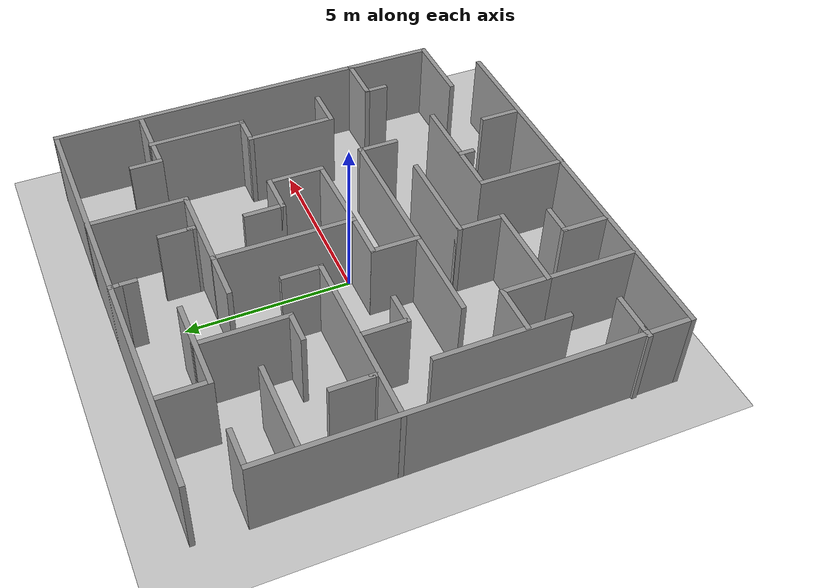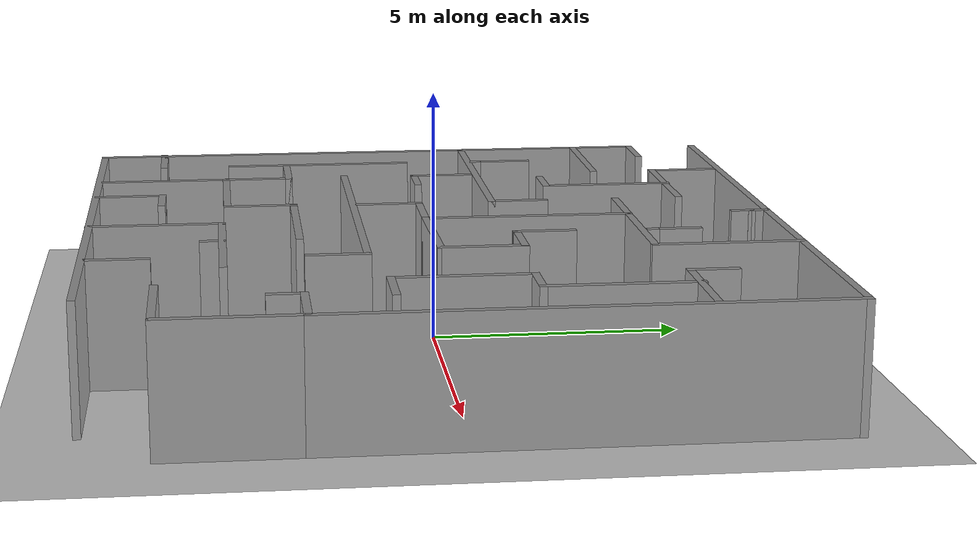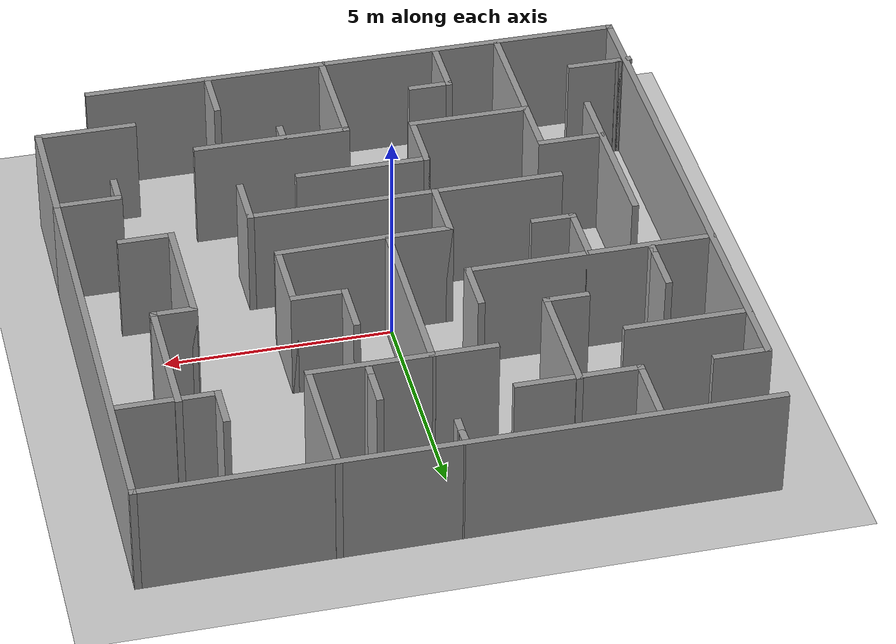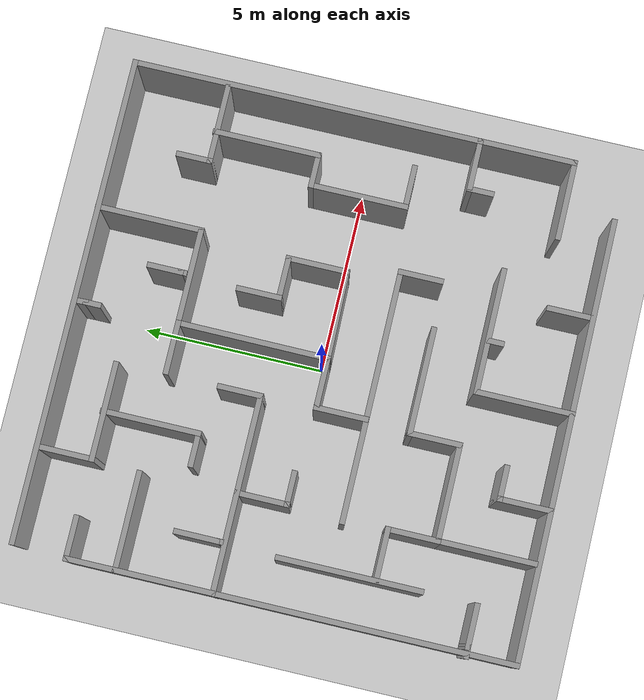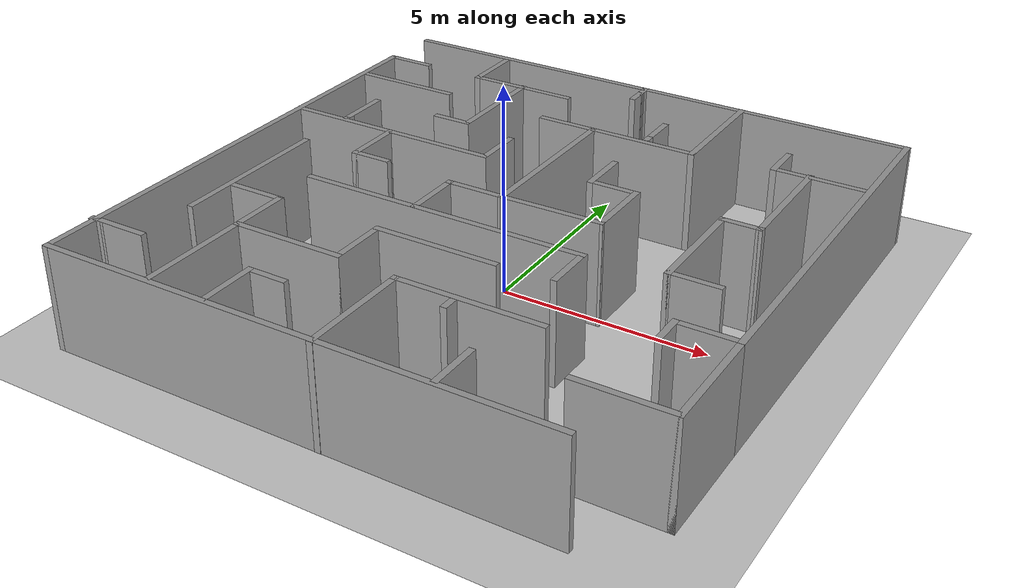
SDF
<sdf version="1.6">
 <world name="default">
  <scene><ambient>0.4 0.4 0.4 1</ambient><background>0.7 0.7 0.7 1</background><shadows>1</shadows></scene>
  <light name="sun" type="directional">
   <pose>0 0 10 0 -0 0</pose>
   <diffuse>0.8 0.8 0.8 1</diffuse>
   <specular>0.2 0.2 0.2 1</specular>
   <attenuation>
    <range>1000</range>
    <constant>0.9</constant>
    <linear>0.01</linear>
    <quadratic>0.001</quadratic>
   </attenuation>
   <direction>-0.5 0.1 -0.9</direction>
  </light>
  <model name="ground_plane">
   <static>1</static>
   <link name="link">
    <collision name="collision">
     <geometry><plane><normal>0 0 1</normal><size>100 100</size></plane></geometry>
     <surface>
      <contact><collide_bitmask>65535</collide_bitmask></contact>
      <friction><ode><mu>100</mu><mu2>50</mu2></ode></friction>
     </surface>
    </collision>
    <visual name="visual">
     <cast_shadows>0</cast_shadows>
     <geometry><plane><normal>0 0 1</normal><size>100 100</size></plane></geometry>
     <material>
      <script><uri>file://media/materials/scripts/gazebo.material</uri><name>Gazebo/Grey</name></script>
     </material>
    </visual>
   </link>
  </model>
  <physics name="default_physics" default="0" type="ode">
   <real_time_update_rate>1000</real_time_update_rate>
   <max_step_size>0.001</max_step_size>
   <real_time_factor>1</real_time_factor>
   <ode>
    <solver>
     <type>quick</type>
     <iters>150</iters>
     <precon_iters>0</precon_iters>
     <sor>1.4</sor>
     <use_dynamic_moi_rescaling>1</use_dynamic_moi_rescaling>
    </solver>
    <constraints>
     <cfm>1e-05</cfm>
     <erp>0.2</erp>
     <contact_max_correcting_vel>2000</contact_max_correcting_vel>
     <contact_surface_layer>0.01</contact_surface_layer>
    </constraints>
   </ode>
  </physics>
  <gravity>0 0 -9.8</gravity>
  <magnetic_field>6e-06 2.3e-05 -4.2e-05</magnetic_field>
  <atmosphere type="adiabatic"/>
  <spherical_coordinates>
   <surface_model>EARTH_WGS84</surface_model>
   <latitude_deg>0</latitude_deg>
   <longitude_deg>0</longitude_deg>
   <elevation>0</elevation>
   <heading_deg>0</heading_deg>
  </spherical_coordinates>
  <model name="enclosed_maze">
   <pose>0.00372 -0.004302 0 0 -0 0</pose>
   <link name="Wall_0">
    <collision name="Wall_0_Collision">
     <geometry><box><size>12.25 0.15 2.5</size></box></geometry>
     <pose>0 0 1.25 0 -0 0</pose>
    </collision>
    <visual name="Wall_0_Visual">
     <pose>0 0 1.25 0 -0 0</pose>
     <geometry><box><size>12.25 0.15 2.5</size></box></geometry>
     <material>
      <script><uri>file://media/materials/scripts/gazebo.material</uri><name>Gazebo/Grey</name></script>
      <ambient>1 1 1 1</ambient>
     </material>
     <meta><layer>0</layer></meta>
    </visual>
    <pose>-0.636099 -6.78809 0 0 -0 3.14159</pose>
   </link>
   <link name="Wall_1">
    <collision name="Wall_1_Collision">
     <geometry><box><size>12.25 0.15 2.5</size></box></geometry>
     <pose>0 0 1.25 0 -0 0</pose>
    </collision>
    <visual name="Wall_1_Visual">
     <pose>0 0 1.25 0 -0 0</pose>
     <geometry><box><size>12.25 0.15 2.5</size></box></geometry>
     <material>
      <script><uri>file://media/materials/scripts/gazebo.material</uri><name>Gazebo/Grey</name></script>
      <ambient>1 1 1 1</ambient>
     </material>
     <meta><layer>0</layer></meta>
    </visual>
    <pose>-6.6861 -0.738093 0 0 -0 1.5708</pose>
   </link>
   <link name="Wall_11">
    <collision name="Wall_11_Collision">
     <geometry><box><size>0.5 0.15 2.5</size></box></geometry>
     <pose>0 0 1.25 0 -0 0</pose>
    </collision>
    <visual name="Wall_11_Visual">
     <pose>0 0 1.25 0 -0 0</pose>
     <geometry><box><size>0.5 0.15 2.5</size></box></geometry>
     <material>
      <script><uri>file://media/materials/scripts/gazebo.material</uri><name>Gazebo/Grey</name></script>
      <ambient>1 1 1 1</ambient>
     </material>
     <meta><layer>0</layer></meta>
    </visual>
    <pose>1.49223 -4.3839 0 0 -0 -1.5708</pose>
   </link>
   <link name="Wall_13">
    <collision name="Wall_13_Collision">
     <geometry><box><size>2.25 0.15 2.5</size></box></geometry>
     <pose>0 0 1.25 0 -0 0</pose>
    </collision>
    <visual name="Wall_13_Visual">
     <pose>0 0 1.25 0 -0 0</pose>
     <geometry><box><size>2.25 0.15 2.5</size></box></geometry>
     <material>
      <script><uri>file://media/materials/scripts/gazebo.material</uri><name>Gazebo/Grey</name></script>
      <ambient>1 1 1 1</ambient>
     </material>
     <meta><layer>0</layer></meta>
    </visual>
    <pose>5.70565 -5.41039 0 0 -0 0</pose>
   </link>
   <link name="Wall_14">
    <collision name="Wall_14_Collision">
     <geometry><box><size>2.75 0.15 2.5</size></box></geometry>
     <pose>0 0 1.25 0 -0 0</pose>
    </collision>
    <visual name="Wall_14_Visual">
     <pose>0 0 1.25 0 -0 0</pose>
     <geometry><box><size>2.75 0.15 2.5</size></box></geometry>
     <material>
      <script><uri>file://media/materials/scripts/gazebo.material</uri><name>Gazebo/Grey</name></script>
      <ambient>1 1 1 1</ambient>
     </material>
     <meta><layer>0</layer></meta>
    </visual>
    <pose>6.75565 -4.11039 0 0 -0 1.5708</pose>
   </link>
   <link name="Wall_15">
    <collision name="Wall_15_Collision">
     <geometry><box><size>1.5 0.15 2.5</size></box></geometry>
     <pose>0 0 1.25 0 -0 0</pose>
    </collision>
    <visual name="Wall_15_Visual">
     <pose>0 0 1.25 0 -0 0</pose>
     <geometry><box><size>1.5 0.15 2.5</size></box></geometry>
     <material>
      <script><uri>file://media/materials/scripts/gazebo.material</uri><name>Gazebo/Grey</name></script>
      <ambient>1 1 1 1</ambient>
     </material>
     <meta><layer>0</layer></meta>
    </visual>
    <pose>6.08065 -2.81039 0 0 -0 3.14159</pose>
   </link>
   <link name="Wall_16">
    <collision name="Wall_16_Collision">
     <geometry><box><size>0.75 0.15 2.5</size></box></geometry>
     <pose>0 0 1.25 0 -0 0</pose>
    </collision>
    <visual name="Wall_16_Visual">
     <pose>0 0 1.25 0 -0 0</pose>
     <geometry><box><size>0.75 0.15 2.5</size></box></geometry>
     <material>
      <script><uri>file://media/materials/scripts/gazebo.material</uri><name>Gazebo/Grey</name></script>
      <ambient>1 1 1 1</ambient>
     </material>
     <meta><layer>0</layer></meta>
    </visual>
    <pose>5.40565 -3.11039 0 0 -0 -1.5708</pose>
   </link>
   <link name="Wall_2">
    <collision name="Wall_2_Collision">
     <geometry><box><size>1.25 0.15 2.5</size></box></geometry>
     <pose>0 0 1.25 0 -0 0</pose>
    </collision>
    <visual name="Wall_2_Visual">
     <pose>0 0 1.25 0 -0 0</pose>
     <geometry><box><size>1.25 0.15 2.5</size></box></geometry>
     <material>
      <script><uri>file://media/materials/scripts/gazebo.material</uri><name>Gazebo/Grey</name></script>
      <ambient>1 1 1 1</ambient>
     </material>
     <meta><layer>0</layer></meta>
    </visual>
    <pose>-6.1361 5.31191 0 0 -0 0</pose>
   </link>
   <link name="Wall_21">
    <collision name="Wall_21_Collision">
     <geometry><box><size>1.5 0.15 2.5</size></box></geometry>
     <pose>0 0 1.25 0 -0 0</pose>
    </collision>
    <visual name="Wall_21_Visual">
     <pose>0 0 1.25 0 -0 0</pose>
     <geometry><box><size>1.5 0.15 2.5</size></box></geometry>
     <material>
      <script><uri>file://media/materials/scripts/gazebo.material</uri><name>Gazebo/Grey</name></script>
      <ambient>1 1 1 1</ambient>
     </material>
     <meta><layer>0</layer></meta>
    </visual>
    <pose>-3.99426 5.96532 0 0 -0 -1.5708</pose>
   </link>
   <link name="Wall_22">
    <collision name="Wall_22_Collision">
     <geometry><box><size>2.75 0.15 2.5</size></box></geometry>
     <pose>0 0 1.25 0 -0 0</pose>
    </collision>
    <visual name="Wall_22_Visual">
     <pose>0 0 1.25 0 -0 0</pose>
     <geometry><box><size>2.75 0.15 2.5</size></box></geometry>
     <material>
      <script><uri>file://media/materials/scripts/gazebo.material</uri><name>Gazebo/Grey</name></script>
      <ambient>1 1 1 1</ambient>
     </material>
     <meta><layer>0</layer></meta>
    </visual>
    <pose>-2.69426 5.29033 0 0 -0 0</pose>
   </link>
   <link name="Wall_25">
    <collision name="Wall_25_Collision">
     <geometry><box><size>9.75 0.15 2.5</size></box></geometry>
     <pose>0 0 1.25 0 -0 0</pose>
    </collision>
    <visual name="Wall_25_Visual">
     <pose>0 0 1.25 0 -0 0</pose>
     <geometry><box><size>9.75 0.15 2.5</size></box></geometry>
     <material>
      <script><uri>file://media/materials/scripts/gazebo.material</uri><name>Gazebo/Grey</name></script>
      <ambient>1 1 1 1</ambient>
     </material>
     <meta><layer>0</layer></meta>
    </visual>
    <pose>6.75565 1.98961 0 0 -0 1.5708</pose>
   </link>
   <link name="Wall_26">
    <collision name="Wall_26_Collision">
     <geometry><box><size>13.5 0.15 2.5</size></box></geometry>
     <pose>0 0 1.25 0 -0 0</pose>
    </collision>
    <visual name="Wall_26_Visual">
     <pose>0 0 1.25 0 -0 0</pose>
     <geometry><box><size>13.5 0.15 2.5</size></box></geometry>
     <material>
      <script><uri>file://media/materials/scripts/gazebo.material</uri><name>Gazebo/Grey</name></script>
      <ambient>1 1 1 1</ambient>
     </material>
     <meta><layer>0</layer></meta>
    </visual>
    <pose>0.080651 6.78961 0 0 -0 3.14159</pose>
   </link>
   <link name="Wall_28">
    <collision name="Wall_28_Collision">
     <geometry><box><size>1.25 0.15 2.5</size></box></geometry>
     <pose>0 0 1.25 0 -0 0</pose>
    </collision>
    <visual name="Wall_28_Visual">
     <pose>0 0 1.25 0 -0 0</pose>
     <geometry><box><size>1.25 0.15 2.5</size></box></geometry>
     <material>
      <script><uri>file://media/materials/scripts/gazebo.material</uri><name>Gazebo/Grey</name></script>
      <ambient>1 1 1 1</ambient>
     </material>
     <meta><layer>0</layer></meta>
    </visual>
    <pose>2.76842 -2.0665 0 0 -0 1.5708</pose>
   </link>
   <link name="Wall_29">
    <collision name="Wall_29_Collision">
     <geometry><box><size>7 0.15 2.5</size></box></geometry>
     <pose>0 0 1.25 0 -0 0</pose>
    </collision>
    <visual name="Wall_29_Visual">
     <pose>0 0 1.25 0 -0 0</pose>
     <geometry><box><size>7 0.15 2.5</size></box></geometry>
     <material>
      <script><uri>file://media/materials/scripts/gazebo.material</uri><name>Gazebo/Grey</name></script>
      <ambient>1 1 1 1</ambient>
     </material>
     <meta><layer>0</layer></meta>
    </visual>
    <pose>-0.656585 -1.5165 0 0 -0 3.14159</pose>
   </link>
   <link name="Wall_31">
    <collision name="Wall_31_Collision">
     <geometry><box><size>1.5 0.15 2.5</size></box></geometry>
     <pose>0 0 1.25 0 -0 0</pose>
    </collision>
    <visual name="Wall_31_Visual">
     <pose>0 0 1.25 0 -0 0</pose>
     <geometry><box><size>1.5 0.15 2.5</size></box></geometry>
     <material>
      <script><uri>file://media/materials/scripts/gazebo.material</uri><name>Gazebo/Grey</name></script>
      <ambient>1 1 1 1</ambient>
     </material>
     <meta><layer>0</layer></meta>
    </visual>
    <pose>-1.30562 -0.830616 0 0 -0 1.5708</pose>
   </link>
   <link name="Wall_32">
    <collision name="Wall_32_Collision">
     <geometry><box><size>1.5 0.15 2.5</size></box></geometry>
     <pose>0 0 1.25 0 -0 0</pose>
    </collision>
    <visual name="Wall_32_Visual">
     <pose>0 0 1.25 0 -0 0</pose>
     <geometry><box><size>1.5 0.15 2.5</size></box></geometry>
     <material>
      <script><uri>file://media/materials/scripts/gazebo.material</uri><name>Gazebo/Grey</name></script>
      <ambient>1 1 1 1</ambient>
     </material>
     <meta><layer>0</layer></meta>
    </visual>
    <pose>-0.630618 -0.155616 0 0 -0 0</pose>
   </link>
   <link name="Wall_33">
    <collision name="Wall_33_Collision">
     <geometry><box><size>4.25 0.15 2.5</size></box></geometry>
     <pose>0 0 1.25 0 -0 0</pose>
    </collision>
    <visual name="Wall_33_Visual">
     <pose>0 0 1.25 0 -0 0</pose>
     <geometry><box><size>4.25 0.15 2.5</size></box></geometry>
     <material>
      <script><uri>file://media/materials/scripts/gazebo.material</uri><name>Gazebo/Grey</name></script>
      <ambient>1 1 1 1</ambient>
     </material>
     <meta><layer>0</layer></meta>
    </visual>
    <pose>0.054382 1.89438 0 0 -0 1.56592</pose>
   </link>
   <link name="Wall_34">
    <collision name="Wall_34_Collision">
     <geometry><box><size>2.73 0.15 2.5</size></box></geometry>
     <pose>0 0 1.25 0 -0 0</pose>
    </collision>
    <visual name="Wall_34_Visual">
     <pose>0 0 1.25 0 -0 0</pose>
     <geometry><box><size>2.73 0.15 2.5</size></box></geometry>
     <material>
      <script><uri>file://media/materials/scripts/gazebo.material</uri><name>Gazebo/Grey</name></script>
      <ambient>1 1 1 1</ambient>
     </material>
     <meta><layer>0</layer></meta>
    </visual>
    <pose>1.35438 3.94439 0 0 -0 0</pose>
   </link>
   <link name="Wall_37">
    <collision name="Wall_37_Collision">
     <geometry><box><size>3 0.15 2.5</size></box></geometry>
     <pose>0 0 1.25 0 -0 0</pose>
    </collision>
    <visual name="Wall_37_Visual">
     <pose>0 0 1.25 0 -0 0</pose>
     <geometry><box><size>3 0.15 2.5</size></box></geometry>
     <material>
      <script><uri>file://media/materials/scripts/gazebo.material</uri><name>Gazebo/Grey</name></script>
      <ambient>1 1 1 1</ambient>
     </material>
     <meta><layer>0</layer></meta>
    </visual>
    <pose>2.64438 5.36938 0 0 -0 1.5708</pose>
   </link>
   <link name="Wall_39">
    <collision name="Wall_39_Collision">
     <geometry><box><size>1 0.15 2.5</size></box></geometry>
     <pose>0 0 1.25 0 -0 0</pose>
    </collision>
    <visual name="Wall_39_Visual">
     <pose>0 0 1.25 0 -0 0</pose>
     <geometry><box><size>1 0.15 2.5</size></box></geometry>
     <material>
      <script><uri>file://media/materials/scripts/gazebo.material</uri><name>Gazebo/Grey</name></script>
      <ambient>1 1 1 1</ambient>
     </material>
     <meta><layer>0</layer></meta>
    </visual>
    <pose>4.55111 4.60002 0 0 -0 -1.5708</pose>
   </link>
   <link name="Wall_4">
    <collision name="Wall_4_Collision">
     <geometry><box><size>1.25 0.15 2.5</size></box></geometry>
     <pose>0 0 1.25 0 -0 0</pose>
    </collision>
    <visual name="Wall_4_Visual">
     <pose>0 0 1.25 0 -0 0</pose>
     <geometry><box><size>1.25 0.15 2.5</size></box></geometry>
     <material>
      <script><uri>file://media/materials/scripts/gazebo.material</uri><name>Gazebo/Grey</name></script>
      <ambient>1 1 1 1</ambient>
     </material>
     <meta><layer>0</layer></meta>
    </visual>
    <pose>2.71551 -6.14504 0 0 -0 1.5708</pose>
   </link>
   <link name="Wall_40">
    <collision name="Wall_40_Collision">
     <geometry><box><size>2.25 0.15 2.5</size></box></geometry>
     <pose>0 0 1.25 0 -0 0</pose>
    </collision>
    <visual name="Wall_40_Visual">
     <pose>0 0 1.25 0 -0 0</pose>
     <geometry><box><size>2.25 0.15 2.5</size></box></geometry>
     <material>
      <script><uri>file://media/materials/scripts/gazebo.material</uri><name>Gazebo/Grey</name></script>
      <ambient>1 1 1 1</ambient>
     </material>
     <meta><layer>0</layer></meta>
    </visual>
    <pose>5.60111 4.17502 0 0 -0 0</pose>
   </link>
   <link name="Wall_42">
    <collision name="Wall_42_Collision">
     <geometry><box><size>3 0.15 2.5</size></box></geometry>
     <pose>0 0 1.25 0 -0 0</pose>
    </collision>
    <visual name="Wall_42_Visual">
     <pose>0 0 1.25 0 -0 0</pose>
     <geometry><box><size>3 0.15 2.5</size></box></geometry>
     <material>
      <script><uri>file://media/materials/scripts/gazebo.material</uri><name>Gazebo/Grey</name></script>
      <ambient>1 1 1 1</ambient>
     </material>
     <meta><layer>0</layer></meta>
    </visual>
    <pose>5.37984 2.78462 0 0 -0 -1.5708</pose>
   </link>
   <link name="Wall_43">
    <collision name="Wall_43_Collision">
     <geometry><box><size>1 0.15 2.5</size></box></geometry>
     <pose>0 0 1.25 0 -0 0</pose>
    </collision>
    <visual name="Wall_43_Visual">
     <pose>0 0 1.25 0 -0 0</pose>
     <geometry><box><size>1 0.15 2.5</size></box></geometry>
     <material>
      <script><uri>file://media/materials/scripts/gazebo.material</uri><name>Gazebo/Grey</name></script>
      <ambient>1 1 1 1</ambient>
     </material>
     <meta><layer>0</layer></meta>
    </visual>
    <pose>4.95484 1.35962 0 0 -0 3.14159</pose>
   </link>
   <link name="Wall_44">
    <collision name="Wall_44_Collision">
     <geometry><box><size>2.75 0.15 2.5</size></box></geometry>
     <pose>0 0 1.25 0 -0 0</pose>
    </collision>
    <visual name="Wall_44_Visual">
     <pose>0 0 1.25 0 -0 0</pose>
     <geometry><box><size>2.75 0.15 2.5</size></box></geometry>
     <material>
      <script><uri>file://media/materials/scripts/gazebo.material</uri><name>Gazebo/Grey</name></script>
      <ambient>1 1 1 1</ambient>
     </material>
     <meta><layer>0</layer></meta>
    </visual>
    <pose>4.52984 0.059621 0 0 -0 -1.5708</pose>
   </link>
   <link name="Wall_45">
    <collision name="Wall_45_Collision">
     <geometry><box><size>1.25 0.15 2.5</size></box></geometry>
     <pose>0 0 1.25 0 -0 0</pose>
    </collision>
    <visual name="Wall_45_Visual">
     <pose>0 0 1.25 0 -0 0</pose>
     <geometry><box><size>1.25 0.15 2.5</size></box></geometry>
     <material>
      <script><uri>file://media/materials/scripts/gazebo.material</uri><name>Gazebo/Grey</name></script>
      <ambient>1 1 1 1</ambient>
     </material>
     <meta><layer>0</layer></meta>
    </visual>
    <pose>5.07984 -1.24038 0 0 -0 0</pose>
   </link>
   <link name="Wall_48">
    <collision name="Wall_48_Collision">
     <geometry><box><size>1.25 0.15 2.5</size></box></geometry>
     <pose>0 0 1.25 0 -0 0</pose>
    </collision>
    <visual name="Wall_48_Visual">
     <pose>0 0 1.25 0 -0 0</pose>
     <geometry><box><size>1.25 0.15 2.5</size></box></geometry>
     <material>
      <script><uri>file://media/materials/scripts/gazebo.material</uri><name>Gazebo/Grey</name></script>
      <ambient>1 1 1 1</ambient>
     </material>
     <meta><layer>0</layer></meta>
    </visual>
    <pose>1.34193 2.03834 0 0 -0 -1.5708</pose>
   </link>
   <link name="Wall_49">
    <collision name="Wall_49_Collision">
     <geometry><box><size>1.25 0.15 2.5</size></box></geometry>
     <pose>0 0 1.25 0 -0 0</pose>
    </collision>
    <visual name="Wall_49_Visual">
     <pose>0 0 1.25 0 -0 0</pose>
     <geometry><box><size>1.25 0.15 2.5</size></box></geometry>
     <material>
      <script><uri>file://media/materials/scripts/gazebo.material</uri><name>Gazebo/Grey</name></script>
      <ambient>1 1 1 1</ambient>
     </material>
     <meta><layer>0</layer></meta>
    </visual>
    <pose>1.89193 1.48834 0 0 -0 0</pose>
   </link>
   <link name="Wall_50">
    <collision name="Wall_50_Collision">
     <geometry><box><size>1.75 0.15 2.5</size></box></geometry>
     <pose>0 0 1.25 0 -0 0</pose>
    </collision>
    <visual name="Wall_50_Visual">
     <pose>0 0 1.25 0 -0 0</pose>
     <geometry><box><size>1.75 0.15 2.5</size></box></geometry>
     <material>
      <script><uri>file://media/materials/scripts/gazebo.material</uri><name>Gazebo/Grey</name></script>
      <ambient>1 1 1 1</ambient>
     </material>
     <meta><layer>0</layer></meta>
    </visual>
    <pose>2.44193 0.688339 0 0 -0 -1.5708</pose>
   </link>
   <link name="Wall_51">
    <collision name="Wall_51_Collision">
     <geometry><box><size>2.54795 0.15 2.5</size></box></geometry>
     <pose>0 0 1.25 0 -0 0</pose>
    </collision>
    <visual name="Wall_51_Visual">
     <pose>0 0 1.25 0 -0 0</pose>
     <geometry><box><size>2.54795 0.15 2.5</size></box></geometry>
     <material>
      <script><uri>file://media/materials/scripts/gazebo.material</uri><name>Gazebo/Grey</name></script>
      <ambient>1 1 1 1</ambient>
     </material>
     <meta><layer>0</layer></meta>
    </visual>
    <pose>1.24316 -0.133638 0 0 -0 -3.12326</pose>
   </link>
   <link name="Wall_53">
    <collision name="Wall_53_Collision">
     <geometry><box><size>5.5 0.15 2.5</size></box></geometry>
     <pose>0 0 1.25 0 -0 0</pose>
    </collision>
    <visual name="Wall_53_Visual">
     <pose>0 0 1.25 0 -0 0</pose>
     <geometry><box><size>5.5 0.15 2.5</size></box></geometry>
     <material>
      <script><uri>file://media/materials/scripts/gazebo.material</uri><name>Gazebo/Grey</name></script>
      <ambient>1 1 1 1</ambient>
     </material>
     <meta><layer>0</layer></meta>
    </visual>
    <pose>-4.01559 1.35698 0 0 -0 0</pose>
   </link>
   <link name="Wall_54">
    <collision name="Wall_54_Collision">
     <geometry><box><size>1.25 0.15 2.5</size></box></geometry>
     <pose>0 0 1.25 0 -0 0</pose>
    </collision>
    <visual name="Wall_54_Visual">
     <pose>0 0 1.25 0 -0 0</pose>
     <geometry><box><size>1.25 0.15 2.5</size></box></geometry>
     <material>
      <script><uri>file://media/materials/scripts/gazebo.material</uri><name>Gazebo/Grey</name></script>
      <ambient>1 1 1 1</ambient>
     </material>
     <meta><layer>0</layer></meta>
    </visual>
    <pose>-1.34059 1.90698 0 0 -0 1.5708</pose>
   </link>
   <link name="Wall_56">
    <collision name="Wall_56_Collision">
     <geometry><box><size>1.5 0.15 2.5</size></box></geometry>
     <pose>0 0 1.25 0 -0 0</pose>
    </collision>
    <visual name="Wall_56_Visual">
     <pose>0 0 1.25 0 -0 0</pose>
     <geometry><box><size>1.5 0.15 2.5</size></box></geometry>
     <material>
      <script><uri>file://media/materials/scripts/gazebo.material</uri><name>Gazebo/Grey</name></script>
      <ambient>1 1 1 1</ambient>
     </material>
     <meta><layer>0</layer></meta>
    </visual>
    <pose>-3.98182 0.681979 0 0 -0 -1.5708</pose>
   </link>
   <link name="Wall_57">
    <collision name="Wall_57_Collision">
     <geometry><box><size>1 0.15 2.5</size></box></geometry>
     <pose>0 0 1.25 0 -0 0</pose>
    </collision>
    <visual name="Wall_57_Visual">
     <pose>0 0 1.25 0 -0 0</pose>
     <geometry><box><size>1 0.15 2.5</size></box></geometry>
     <material>
      <script><uri>file://media/materials/scripts/gazebo.material</uri><name>Gazebo/Grey</name></script>
      <ambient>1 1 1 1</ambient>
     </material>
     <meta><layer>0</layer></meta>
    </visual>
    <pose>-3.55682 0.006979 0 0 -0 0</pose>
   </link>
   <link name="Wall_59">
    <collision name="Wall_59_Collision">
     <geometry><box><size>4 0.15 2.5</size></box></geometry>
     <pose>0 0 1.25 0 -0 0</pose>
    </collision>
    <visual name="Wall_59_Visual">
     <pose>0 0 1.25 0 -0 0</pose>
     <geometry><box><size>4 0.15 2.5</size></box></geometry>
     <material>
      <script><uri>file://media/materials/scripts/gazebo.material</uri><name>Gazebo/Grey</name></script>
      <ambient>1 1 1 1</ambient>
     </material>
     <meta><layer>0</layer></meta>
    </visual>
    <pose>-5.38897 -2.01035 0 0 -0 -1.5708</pose>
   </link>
   <link name="Wall_61">
    <collision name="Wall_61_Collision">
     <geometry><box><size>1.5 0.15 2.5</size></box></geometry>
     <pose>0 0 1.25 0 -0 0</pose>
    </collision>
    <visual name="Wall_61_Visual">
     <pose>0 0 1.25 0 -0 0</pose>
     <geometry><box><size>1.5 0.15 2.5</size></box></geometry>
     <material>
      <script><uri>file://media/materials/scripts/gazebo.material</uri><name>Gazebo/Grey</name></script>
      <ambient>1 1 1 1</ambient>
     </material>
     <meta><layer>0</layer></meta>
    </visual>
    <pose>-4.67879 -2.72376 0 0 -0 0</pose>
   </link>
   <link name="Wall_62">
    <collision name="Wall_62_Collision">
     <geometry><box><size>1.5 0.15 2.5</size></box></geometry>
     <pose>0 0 1.25 0 -0 0</pose>
    </collision>
    <visual name="Wall_62_Visual">
     <pose>0 0 1.25 0 -0 0</pose>
     <geometry><box><size>1.5 0.15 2.5</size></box></geometry>
     <material>
      <script><uri>file://media/materials/scripts/gazebo.material</uri><name>Gazebo/Grey</name></script>
      <ambient>1 1 1 1</ambient>
     </material>
     <meta><layer>0</layer></meta>
    </visual>
    <pose>-4.00379 -3.39876 0 0 -0 -1.5708</pose>
   </link>
   <link name="Wall_63">
    <collision name="Wall_63_Collision">
     <geometry><box><size>2.75 0.15 2.5</size></box></geometry>
     <pose>0 0 1.25 0 -0 0</pose>
    </collision>
    <visual name="Wall_63_Visual">
     <pose>0 0 1.25 0 -0 0</pose>
     <geometry><box><size>2.75 0.15 2.5</size></box></geometry>
     <material>
      <script><uri>file://media/materials/scripts/gazebo.material</uri><name>Gazebo/Grey</name></script>
      <ambient>1 1 1 1</ambient>
     </material>
     <meta><layer>0</layer></meta>
    </visual>
    <pose>-2.70379 -4.07376 0 0 -0 0</pose>
   </link>
   <link name="Wall_64">
    <collision name="Wall_64_Collision">
     <geometry><box><size>1.5 0.15 2.5</size></box></geometry>
     <pose>0 0 1.25 0 -0 0</pose>
    </collision>
    <visual name="Wall_64_Visual">
     <pose>0 0 1.25 0 -0 0</pose>
     <geometry><box><size>1.5 0.15 2.5</size></box></geometry>
     <material>
      <script><uri>file://media/materials/scripts/gazebo.material</uri><name>Gazebo/Grey</name></script>
      <ambient>1 1 1 1</ambient>
     </material>
     <meta><layer>0</layer></meta>
    </visual>
    <pose>-1.40379 -3.39876 0 0 -0 1.5708</pose>
   </link>
   <link name="Wall_65">
    <collision name="Wall_65_Collision">
     <geometry><box><size>3 0.15 2.5</size></box></geometry>
     <pose>0 0 1.25 0 -0 0</pose>
    </collision>
    <visual name="Wall_65_Visual">
     <pose>0 0 1.25 0 -0 0</pose>
     <geometry><box><size>3 0.15 2.5</size></box></geometry>
     <material>
      <script><uri>file://media/materials/scripts/gazebo.material</uri><name>Gazebo/Grey</name></script>
      <ambient>1 1 1 1</ambient>
     </material>
     <meta><layer>0</layer></meta>
    </visual>
    <pose>0.021206 -2.72376 0 0 -0 0</pose>
   </link>
   <link name="Wall_67">
    <collision name="Wall_67_Collision">
     <geometry><box><size>2.75 0.15 2.5</size></box></geometry>
     <pose>0 0 1.25 0 -0 0</pose>
    </collision>
    <visual name="Wall_67_Visual">
     <pose>0 0 1.25 0 -0 0</pose>
     <geometry><box><size>2.75 0.15 2.5</size></box></geometry>
     <material>
      <script><uri>file://media/materials/scripts/gazebo.material</uri><name>Gazebo/Grey</name></script>
      <ambient>1 1 1 1</ambient>
     </material>
     <meta><layer>0</layer></meta>
    </visual>
    <pose>-4.00379 -5.37376 0 0 -0 -1.5708</pose>
   </link>
   <link name="Wall_69">
    <collision name="Wall_69_Collision">
     <geometry><box><size>1.25 0.15 2.5</size></box></geometry>
     <pose>0 0 1.25 0 -0 0</pose>
    </collision>
    <visual name="Wall_69_Visual">
     <pose>0 0 1.25 0 -0 0</pose>
     <geometry><box><size>1.25 0.15 2.5</size></box></geometry>
     <material>
      <script><uri>file://media/materials/scripts/gazebo.material</uri><name>Gazebo/Grey</name></script>
      <ambient>1 1 1 1</ambient>
     </material>
     <meta><layer>0</layer></meta>
    </visual>
    <pose>-5.96395 -5.43945 0 0 -0 3.14159</pose>
   </link>
   <link name="Wall_71">
    <collision name="Wall_71_Collision">
     <geometry><box><size>0.15 0.15 2.5</size></box></geometry>
     <pose>0 0 1.25 0 -0 0</pose>
    </collision>
    <visual name="Wall_71_Visual">
     <pose>0 0 1.25 0 -0 0</pose>
     <geometry><box><size>0.15 0.15 2.5</size></box></geometry>
     <material>
      <script><uri>file://media/materials/scripts/gazebo.material</uri><name>Gazebo/Grey</name></script>
      <ambient>1 1 1 1</ambient>
     </material>
     <meta><layer>0</layer></meta>
    </visual>
    <pose>-6.51395 -5.43945 0 0 -0 0</pose>
   </link>
   <link name="Wall_73">
    <collision name="Wall_73_Collision">
     <geometry><box><size>0.388605 0.15 2.5</size></box></geometry>
     <pose>0 0 1.25 0 -0 0</pose>
    </collision>
    <visual name="Wall_73_Visual">
     <pose>0 0 1.25 0 -0 0</pose>
     <geometry><box><size>0.388605 0.15 2.5</size></box></geometry>
     <material>
      <script><uri>file://media/materials/scripts/gazebo.material</uri><name>Gazebo/Grey</name></script>
      <ambient>1 1 1 1</ambient>
     </material>
     <meta><layer>0</layer></meta>
    </visual>
    <pose>-6.63313 -5.4449 0 0 -0 0.045634</pose>
   </link>
   <link name="Wall_75">
    <collision name="Wall_75_Collision">
     <geometry><box><size>1.5 0.15 2.5</size></box></geometry>
     <pose>0 0 1.25 0 -0 0</pose>
    </collision>
    <visual name="Wall_75_Visual">
     <pose>0 0 1.25 0 -0 0</pose>
     <geometry><box><size>1.5 0.15 2.5</size></box></geometry>
     <material>
      <script><uri>file://media/materials/scripts/gazebo.material</uri><name>Gazebo/Grey</name></script>
      <ambient>1 1 1 1</ambient>
     </material>
     <meta><layer>0</layer></meta>
    </visual>
    <pose>-2.55469 -6.08709 0 0 -0 1.5708</pose>
   </link>
   <link name="Wall_77">
    <collision name="Wall_77_Collision">
     <geometry><box><size>1 0.15 2.5</size></box></geometry>
     <pose>0 0 1.25 0 -0 0</pose>
    </collision>
    <visual name="Wall_77_Visual">
     <pose>0 0 1.25 0 -0 0</pose>
     <geometry><box><size>1 0.15 2.5</size></box></geometry>
     <material>
      <script><uri>file://media/materials/scripts/gazebo.material</uri><name>Gazebo/Grey</name></script>
      <ambient>1 1 1 1</ambient>
     </material>
     <meta><layer>0</layer></meta>
    </visual>
    <pose>-2.12969 -5.41209 0 0 -0 0</pose>
   </link>
   <link name="Wall_79">
    <collision name="Wall_79_Collision">
     <geometry><box><size>1.25 0.15 2.5</size></box></geometry>
     <pose>0 0 1.25 0 -0 0</pose>
    </collision>
    <visual name="Wall_79_Visual">
     <pose>0 0 1.25 0 -0 0</pose>
     <geometry><box><size>1.25 0.15 2.5</size></box></geometry>
     <material>
      <script><uri>file://media/materials/scripts/gazebo.material</uri><name>Gazebo/Grey</name></script>
      <ambient>1 1 1 1</ambient>
     </material>
     <meta><layer>0</layer></meta>
    </visual>
    <pose>-5.33443 2.12023 0 0 -0 -1.5708</pose>
   </link>
   <link name="Wall_8">
    <collision name="Wall_8_Collision">
     <geometry><box><size>2.75 0.15 2.5</size></box></geometry>
     <pose>0 0 1.25 0 -0 0</pose>
    </collision>
    <visual name="Wall_8_Visual">
     <pose>0 0 1.25 0 -0 0</pose>
     <geometry><box><size>2.75 0.15 2.5</size></box></geometry>
     <material>
      <script><uri>file://media/materials/scripts/gazebo.material</uri><name>Gazebo/Grey</name></script>
      <ambient>1 1 1 1</ambient>
     </material>
     <meta><layer>0</layer></meta>
    </visual>
    <pose>0.077817 -5.49439 0 0 -0 1.5708</pose>
   </link>
   <link name="Wall_81">
    <collision name="Wall_81_Collision">
     <geometry><box><size>0.25 0.15 2.5</size></box></geometry>
     <pose>0 0 1.25 0 -0 0</pose>
    </collision>
    <visual name="Wall_81_Visual">
     <pose>0 0 1.25 0 -0 0</pose>
     <geometry><box><size>0.25 0.15 2.5</size></box></geometry>
     <material>
      <script><uri>file://media/materials/scripts/gazebo.material</uri><name>Gazebo/Grey</name></script>
      <ambient>1 1 1 1</ambient>
     </material>
     <meta><layer>0</layer></meta>
    </visual>
    <pose>-5.33443 1.52023 0 0 -0 -1.5708</pose>
   </link>
   <link name="Wall_83">
    <collision name="Wall_83_Collision">
     <geometry><box><size>2.75 0.15 2.5</size></box></geometry>
     <pose>0 0 1.25 0 -0 0</pose>
    </collision>
    <visual name="Wall_83_Visual">
     <pose>0 0 1.25 0 -0 0</pose>
     <geometry><box><size>2.75 0.15 2.5</size></box></geometry>
     <material>
      <script><uri>file://media/materials/scripts/gazebo.material</uri><name>Gazebo/Grey</name></script>
      <ambient>1 1 1 1</ambient>
     </material>
     <meta><layer>0</layer></meta>
    </visual>
    <pose>-5.36762 3.98651 0 0 -0 3.14159</pose>
   </link>
   <link name="Wall_85">
    <collision name="Wall_85_Collision">
     <geometry><box><size>1 0.15 2.5</size></box></geometry>
     <pose>0 0 1.25 0 -0 0</pose>
    </collision>
    <visual name="Wall_85_Visual">
     <pose>0 0 1.25 0 -0 0</pose>
     <geometry><box><size>1 0.15 2.5</size></box></geometry>
     <material>
      <script><uri>file://media/materials/scripts/gazebo.material</uri><name>Gazebo/Grey</name></script>
      <ambient>1 1 1 1</ambient>
     </material>
     <meta><layer>0</layer></meta>
    </visual>
    <pose>-3.11062 2.71433 0 0 -0 0</pose>
   </link>
   <link name="Wall_86">
    <collision name="Wall_86_Collision">
     <geometry><box><size>2.75 0.15 2.5</size></box></geometry>
     <pose>0 0 1.25 0 -0 0</pose>
    </collision>
    <visual name="Wall_86_Visual">
     <pose>0 0 1.25 0 -0 0</pose>
     <geometry><box><size>2.75 0.15 2.5</size></box></geometry>
     <material>
      <script><uri>file://media/materials/scripts/gazebo.material</uri><name>Gazebo/Grey</name></script>
      <ambient>1 1 1 1</ambient>
     </material>
     <meta><layer>0</layer></meta>
    </visual>
    <pose>-2.68562 4.01433 0 0 -0 1.5708</pose>
   </link>
   <link name="Wall_88">
    <collision name="Wall_88_Collision">
     <geometry><box><size>1 0.15 2.5</size></box></geometry>
     <pose>0 0 1.25 0 -0 0</pose>
    </collision>
    <visual name="Wall_88_Visual">
     <pose>0 0 1.25 0 -0 0</pose>
     <geometry><box><size>1 0.15 2.5</size></box></geometry>
     <material>
      <script><uri>file://media/materials/scripts/gazebo.material</uri><name>Gazebo/Grey</name></script>
      <ambient>1 1 1 1</ambient>
     </material>
     <meta><layer>0</layer></meta>
    </visual>
    <pose>1.41224 4.63149 0 0 -0 -1.5708</pose>
   </link>
   <link name="Wall_9">
    <collision name="Wall_9_Collision">
     <geometry><box><size>3.5 0.15 2.5</size></box></geometry>
     <pose>0 0 1.25 0 -0 0</pose>
    </collision>
    <visual name="Wall_9_Visual">
     <pose>0 0 1.25 0 -0 0</pose>
     <geometry><box><size>3.5 0.15 2.5</size></box></geometry>
     <material>
      <script><uri>file://media/materials/scripts/gazebo.material</uri><name>Gazebo/Grey</name></script>
      <ambient>1 1 1 1</ambient>
     </material>
     <meta><layer>0</layer></meta>
    </visual>
    <pose>1.75282 -4.19438 0 0 -0 0</pose>
   </link>
   <link name="Wall_90">
    <collision name="Wall_90_Collision">
     <geometry><box><size>0.25 0.15 2.5</size></box></geometry>
     <pose>0 0 1.25 0 -0 0</pose>
    </collision>
    <visual name="Wall_90_Visual">
     <pose>0 0 1.25 0 -0 0</pose>
     <geometry><box><size>0.25 0.15 2.5</size></box></geometry>
     <material>
      <script><uri>file://media/materials/scripts/gazebo.material</uri><name>Gazebo/Grey</name></script>
      <ambient>1 1 1 1</ambient>
     </material>
     <meta><layer>0</layer></meta>
    </visual>
    <pose>1.41224 4.15649 0 0 -0 -1.5708</pose>
   </link>
   <link name="Wall_94">
    <collision name="Wall_94_Collision">
     <geometry><box><size>0.5 0.15 2.5</size></box></geometry>
     <pose>0 0 1.25 0 -0 0</pose>
    </collision>
    <visual name="Wall_94_Visual">
     <pose>0 0 1.25 0 -0 0</pose>
     <geometry><box><size>0.5 0.15 2.5</size></box></geometry>
     <material>
      <script><uri>file://media/materials/scripts/gazebo.material</uri><name>Gazebo/Grey</name></script>
      <ambient>1 1 1 1</ambient>
     </material>
     <meta><layer>0</layer></meta>
    </visual>
    <pose>0.041265 6.30054 0 0 -0 1.5708</pose>
   </link>
   <link name="Wall_96">
    <collision name="Wall_96_Collision">
     <geometry><box><size>0.462986 0.15 2.5</size></box></geometry>
     <pose>0 0 1.25 0 -0 0</pose>
    </collision>
    <visual name="Wall_96_Visual">
     <pose>0 0 1.25 0 -0 0</pose>
     <geometry><box><size>0.462986 0.15 2.5</size></box></geometry>
     <material>
      <script><uri>file://media/materials/scripts/gazebo.material</uri><name>Gazebo/Grey</name></script>
      <ambient>1 1 1 1</ambient>
     </material>
     <meta><layer>0</layer></meta>
    </visual>
    <pose>0.035429 6.63192 0 0 -0 -1.53349</pose>
   </link>
   <link name="Wall_98">
    <collision name="Wall_98_Collision">
     <geometry><box><size>1.5 0.15 2.5</size></box></geometry>
     <pose>0 0 1.25 0 -0 0</pose>
    </collision>
    <visual name="Wall_98_Visual">
     <pose>0 0 1.25 0 -0 0</pose>
     <geometry><box><size>1.5 0.15 2.5</size></box></geometry>
     <material>
      <script><uri>file://media/materials/scripts/gazebo.material</uri><name>Gazebo/Grey</name></script>
      <ambient>1 1 1 1</ambient>
     </material>
     <meta><layer>0</layer></meta>
    </visual>
    <pose>-0.610618 3.94439 0 0 -0 3.14159</pose>
   </link>
   <static>1</static>
  </model>
 </world>
</sdf>
